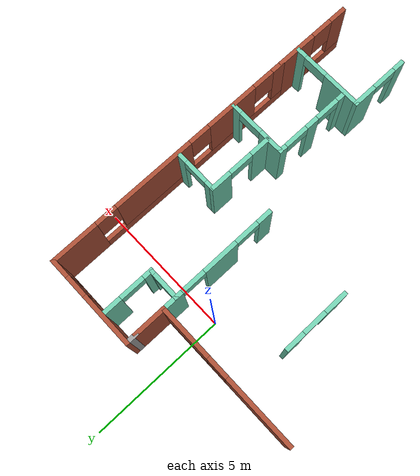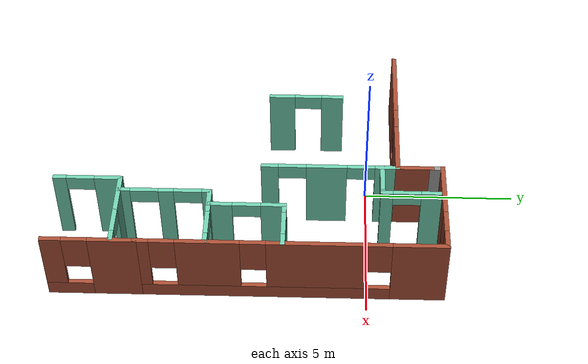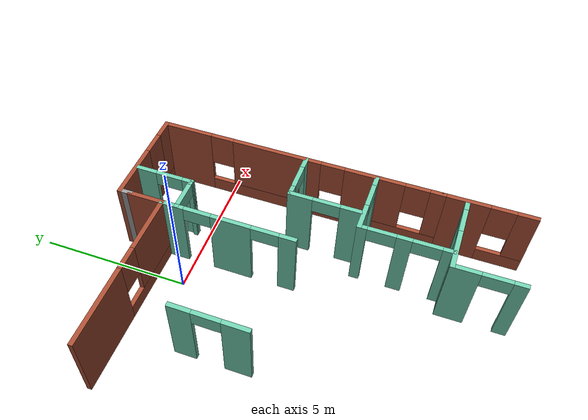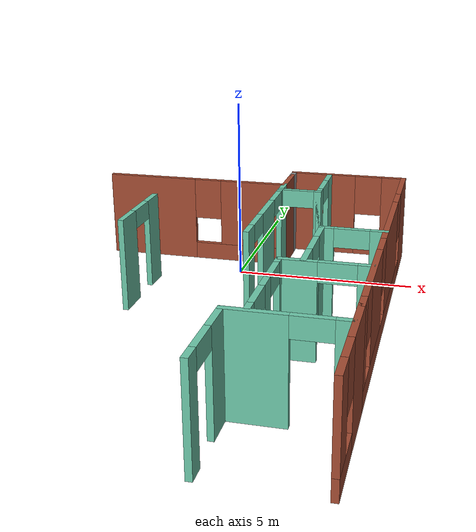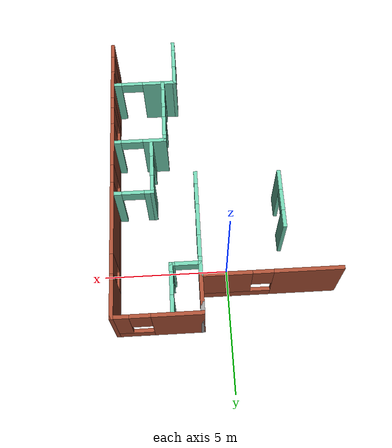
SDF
<sdf version="1.6">
 <model name="my_apartment">
  <pose>-3.10653 -3.79856 0 0 -0 0</pose>
  <link name="Wall_0">
   <pose>1.52918 4.775 0 0 -0 0</pose>
   <visual name="Wall_0_Visual_0">
    <pose>-1.4096 0 1.25 0 -0 0</pose>
    <geometry><box><size>2.6808 0.15 2.5</size></box></geometry>
    <material>
     <script><uri>file://media/materials/scripts/gazebo.material</uri><name>Gazebo/Bricks</name></script>
     <ambient>0.435294 0.796078 0.67451 1</ambient>
    </material>
    <meta><layer>0</layer></meta>
   </visual>
   <collision name="Wall_0_Collision_0">
    <geometry><box><size>2.6808 0.15 2.5</size></box></geometry>
    <pose>-1.4096 0 1.25 0 -0 0</pose>
   </collision>
   <visual name="Wall_0_Visual_1">
    <pose>1.3404 0 0.25 0 -0 0</pose>
    <geometry><box><size>2.8192 0.15 0.5</size></box></geometry>
    <material>
     <script><uri>file://media/materials/scripts/gazebo.material</uri><name>Gazebo/Bricks</name></script>
     <ambient>0.435294 0.796078 0.67451 1</ambient>
    </material>
    <meta><layer>0</layer></meta>
   </visual>
   <collision name="Wall_0_Collision_1">
    <geometry><box><size>2.8192 0.15 0.5</size></box></geometry>
    <pose>1.3404 0 0.25 0 -0 0</pose>
   </collision>
   <visual name="Wall_0_Visual_2">
    <pose>1.7404 0 1.5 0 -0 0</pose>
    <geometry><box><size>2.0192 0.15 2</size></box></geometry>
    <material>
     <script><uri>file://media/materials/scripts/gazebo.material</uri><name>Gazebo/Bricks</name></script>
     <ambient>0.435294 0.796078 0.67451 1</ambient>
    </material>
    <meta><layer>0</layer></meta>
   </visual>
   <collision name="Wall_0_Collision_2">
    <geometry><box><size>2.0192 0.15 2</size></box></geometry>
    <pose>1.7404 0 1.5 0 -0 0</pose>
   </collision>
   <visual name="Wall_0_Visual_3">
    <pose>0.330804 0 1.9 0 -0 0</pose>
    <geometry><box><size>0.8 0.15 1.2</size></box></geometry>
    <material>
     <script><uri>file://media/materials/scripts/gazebo.material</uri><name>Gazebo/Bricks</name></script>
     <ambient>0.435294 0.796078 0.67451 1</ambient>
    </material>
    <meta><layer>0</layer></meta>
   </visual>
   <collision name="Wall_0_Collision_3">
    <geometry><box><size>0.8 0.15 1.2</size></box></geometry>
    <pose>0.330804 0 1.9 0 -0 0</pose>
   </collision>
  </link>
  <link name="Wall_1">
   <collision name="Wall_1_Collision">
    <geometry><box><size>1.25 0.15 2.5</size></box></geometry>
    <pose>0 0 1.25 0 -0 0</pose>
   </collision>
   <visual name="Wall_1_Visual">
    <pose>0 0 1.25 0 -0 0</pose>
    <geometry><box><size>1.25 0.15 2.5</size></box></geometry>
    <material>
     <script><uri>file://media/materials/scripts/gazebo.material</uri><name>Gazebo/Bricks</name></script>
     <ambient>0.435294 0.796078 0.67451 1</ambient>
    </material>
    <meta><layer>0</layer></meta>
   </visual>
   <pose>4.20418 5.325 0 0 -0 1.5708</pose>
  </link>
  <link name="Wall_17">
   <pose>4.20435 2.59978 0 0 -0 1.57088</pose>
   <visual name="Wall_17_Visual_0">
    <pose>-1.96795 0 1.25 0 -0 0</pose>
    <geometry><box><size>0.564378 0.15 2.5</size></box></geometry>
    <material>
     <script><uri>file://media/materials/scripts/gazebo.material</uri><name>Gazebo/Grey</name></script>
     <ambient>0.435294 0.796078 0.67451 1</ambient>
    </material>
    <meta><layer>0</layer></meta>
   </visual>
   <collision name="Wall_17_Collision_0">
    <geometry><box><size>0.564378 0.15 2.5</size></box></geometry>
    <pose>-1.96795 0 1.25 0 -0 0</pose>
   </collision>
   <visual name="Wall_17_Visual_1">
    <pose>-0.125495 0 1.25 0 -0 0</pose>
    <geometry><box><size>1.32054 0.15 2.5</size></box></geometry>
    <material>
     <script><uri>file://media/materials/scripts/gazebo.material</uri><name>Gazebo/Grey</name></script>
     <ambient>0.435294 0.796078 0.67451 1</ambient>
    </material>
    <meta><layer>0</layer></meta>
   </visual>
   <collision name="Wall_17_Collision_1">
    <geometry><box><size>1.32054 0.15 2.5</size></box></geometry>
    <pose>-0.125495 0 1.25 0 -0 0</pose>
   </collision>
   <visual name="Wall_17_Visual_2">
    <pose>1.84246 0 1.25 0 -0 0</pose>
    <geometry><box><size>0.815367 0.15 2.5</size></box></geometry>
    <material>
     <script><uri>file://media/materials/scripts/gazebo.material</uri><name>Gazebo/Grey</name></script>
     <ambient>0.435294 0.796078 0.67451 1</ambient>
    </material>
    <meta><layer>0</layer></meta>
   </visual>
   <collision name="Wall_17_Collision_2">
    <geometry><box><size>0.815367 0.15 2.5</size></box></geometry>
    <pose>1.84246 0 1.25 0 -0 0</pose>
   </collision>
   <visual name="Wall_17_Visual_3">
    <pose>-1.23577 0 2.25 0 -0 0</pose>
    <geometry><box><size>0.9 0.15 0.5</size></box></geometry>
    <material>
     <script><uri>file://media/materials/scripts/gazebo.material</uri><name>Gazebo/Grey</name></script>
     <ambient>0.435294 0.796078 0.67451 1</ambient>
    </material>
    <meta><layer>0</layer></meta>
   </visual>
   <collision name="Wall_17_Collision_3">
    <geometry><box><size>0.9 0.15 0.5</size></box></geometry>
    <pose>-1.23577 0 2.25 0 -0 0</pose>
   </collision>
   <visual name="Wall_17_Visual_4">
    <pose>0.984776 0 2.25 0 -0 0</pose>
    <geometry><box><size>0.9 0.15 0.5</size></box></geometry>
    <material>
     <script><uri>file://media/materials/scripts/gazebo.material</uri><name>Gazebo/Grey</name></script>
     <ambient>0.435294 0.796078 0.67451 1</ambient>
    </material>
    <meta><layer>0</layer></meta>
   </visual>
   <collision name="Wall_17_Collision_4">
    <geometry><box><size>0.9 0.15 0.5</size></box></geometry>
    <pose>0.984776 0 2.25 0 -0 0</pose>
   </collision>
  </link>
  <link name="Wall_2">
   <collision name="Wall_2_Collision">
    <geometry><box><size>0.5 0.15 2.5</size></box></geometry>
    <pose>0 0 1.25 0 -0 0</pose>
   </collision>
   <visual name="Wall_2_Visual">
    <pose>0 0 1.25 0 -0 0</pose>
    <geometry><box><size>0.5 0.15 2.5</size></box></geometry>
    <material>
     <script><uri>file://media/materials/scripts/gazebo.material</uri><name>Gazebo/Grey</name></script>
     <ambient>1 1 1 1</ambient>
    </material>
    <meta><layer>0</layer></meta>
   </visual>
   <pose>4.20418 6.05 0 0 -0 1.5708</pose>
  </link>
  <link name="Wall_23">
   <pose>0.843373 1.74021 0 0 0 -1.5708</pose>
   <visual name="Wall_23_Visual_0">
    <pose>-0.881649 0 1.25 0 -0 0</pose>
    <geometry><box><size>0.736702 0.15 2.5</size></box></geometry>
    <material>
     <script><uri>file://media/materials/scripts/gazebo.material</uri><name>Gazebo/Grey</name></script>
     <ambient>0.435294 0.796078 0.67451 1</ambient>
    </material>
    <meta><layer>0</layer></meta>
   </visual>
   <collision name="Wall_23_Collision_0">
    <geometry><box><size>0.736702 0.15 2.5</size></box></geometry>
    <pose>-0.881649 0 1.25 0 -0 0</pose>
   </collision>
   <visual name="Wall_23_Visual_1">
    <pose>0.818351 0 1.25 0 -0 0</pose>
    <geometry><box><size>0.863298 0.15 2.5</size></box></geometry>
    <material>
     <script><uri>file://media/materials/scripts/gazebo.material</uri><name>Gazebo/Grey</name></script>
     <ambient>0.435294 0.796078 0.67451 1</ambient>
    </material>
    <meta><layer>0</layer></meta>
   </visual>
   <collision name="Wall_23_Collision_1">
    <geometry><box><size>0.863298 0.15 2.5</size></box></geometry>
    <pose>0.818351 0 1.25 0 -0 0</pose>
   </collision>
   <visual name="Wall_23_Visual_2">
    <pose>-0.063298 0 2.25 0 -0 0</pose>
    <geometry><box><size>0.9 0.15 0.5</size></box></geometry>
    <material>
     <script><uri>file://media/materials/scripts/gazebo.material</uri><name>Gazebo/Grey</name></script>
     <ambient>0.435294 0.796078 0.67451 1</ambient>
    </material>
    <meta><layer>0</layer></meta>
   </visual>
   <collision name="Wall_23_Collision_2">
    <geometry><box><size>0.9 0.15 0.5</size></box></geometry>
    <pose>-0.063298 0 2.25 0 -0 0</pose>
   </collision>
  </link>
  <link name="Wall_27">
   <pose>4.7693 4.27848 0 0 -0 0</pose>
   <visual name="Wall_27_Visual_0">
    <pose>-0.558063 0 1.25 0 -0 0</pose>
    <geometry><box><size>0.133873 0.15 2.5</size></box></geometry>
    <material>
     <script><uri>file://media/materials/scripts/gazebo.material</uri><name>Gazebo/Grey</name></script>
     <ambient>0.435294 0.796078 0.67451 1</ambient>
    </material>
    <meta><layer>0</layer></meta>
   </visual>
   <collision name="Wall_27_Collision_0">
    <geometry><box><size>0.133873 0.15 2.5</size></box></geometry>
    <pose>-0.558063 0 1.25 0 -0 0</pose>
   </collision>
   <visual name="Wall_27_Visual_1">
    <pose>0.516937 0 1.25 0 -0 0</pose>
    <geometry><box><size>0.216127 0.15 2.5</size></box></geometry>
    <material>
     <script><uri>file://media/materials/scripts/gazebo.material</uri><name>Gazebo/Grey</name></script>
     <ambient>0.435294 0.796078 0.67451 1</ambient>
    </material>
    <meta><layer>0</layer></meta>
   </visual>
   <collision name="Wall_27_Collision_1">
    <geometry><box><size>0.216127 0.15 2.5</size></box></geometry>
    <pose>0.516937 0 1.25 0 -0 0</pose>
   </collision>
   <visual name="Wall_27_Visual_2">
    <pose>-0.041127 0 2.25 0 -0 0</pose>
    <geometry><box><size>0.9 0.15 0.5</size></box></geometry>
    <material>
     <script><uri>file://media/materials/scripts/gazebo.material</uri><name>Gazebo/Grey</name></script>
     <ambient>0.435294 0.796078 0.67451 1</ambient>
    </material>
    <meta><layer>0</layer></meta>
   </visual>
   <collision name="Wall_27_Collision_2">
    <geometry><box><size>0.9 0.15 0.5</size></box></geometry>
    <pose>-0.041127 0 2.25 0 -0 0</pose>
   </collision>
  </link>
  <link name="Wall_28">
   <pose>5.3193 5.20348 0 0 -0 1.5708</pose>
   <visual name="Wall_28_Visual_0">
    <pose>-0.805845 0 1.25 0 -0 0</pose>
    <geometry><box><size>0.38831 0.15 2.5</size></box></geometry>
    <material>
     <script><uri>file://media/materials/scripts/gazebo.material</uri><name>Gazebo/Grey</name></script>
     <ambient>0.435294 0.796078 0.67451 1</ambient>
    </material>
    <meta><layer>0</layer></meta>
   </visual>
   <collision name="Wall_28_Collision_0">
    <geometry><box><size>0.38831 0.15 2.5</size></box></geometry>
    <pose>-0.805845 0 1.25 0 -0 0</pose>
   </collision>
   <visual name="Wall_28_Visual_1">
    <pose>0.644155 0 1.25 0 -0 0</pose>
    <geometry><box><size>0.71169 0.15 2.5</size></box></geometry>
    <material>
     <script><uri>file://media/materials/scripts/gazebo.material</uri><name>Gazebo/Grey</name></script>
     <ambient>0.435294 0.796078 0.67451 1</ambient>
    </material>
    <meta><layer>0</layer></meta>
   </visual>
   <collision name="Wall_28_Collision_1">
    <geometry><box><size>0.71169 0.15 2.5</size></box></geometry>
    <pose>0.644155 0 1.25 0 -0 0</pose>
   </collision>
   <visual name="Wall_28_Visual_2">
    <pose>-0.16169 0 2.25 0 -0 0</pose>
    <geometry><box><size>0.9 0.15 0.5</size></box></geometry>
    <material>
     <script><uri>file://media/materials/scripts/gazebo.material</uri><name>Gazebo/Grey</name></script>
     <ambient>0.435294 0.796078 0.67451 1</ambient>
    </material>
    <meta><layer>0</layer></meta>
   </visual>
   <collision name="Wall_28_Collision_2">
    <geometry><box><size>0.9 0.15 0.5</size></box></geometry>
    <pose>-0.16169 0 2.25 0 -0 0</pose>
   </collision>
  </link>
  <link name="Wall_3">
   <pose>5.87918 6.225 0 0 -0 0</pose>
   <visual name="Wall_3_Visual_0">
    <pose>-0.759972 0 1.25 0 -0 0</pose>
    <geometry><box><size>1.98006 0.15 2.5</size></box></geometry>
    <material>
     <script><uri>file://media/materials/scripts/gazebo.material</uri><name>Gazebo/Bricks</name></script>
     <ambient>0.435294 0.796078 0.67451 1</ambient>
    </material>
    <meta><layer>0</layer></meta>
   </visual>
   <collision name="Wall_3_Collision_0">
    <geometry><box><size>1.98006 0.15 2.5</size></box></geometry>
    <pose>-0.759972 0 1.25 0 -0 0</pose>
   </collision>
   <visual name="Wall_3_Visual_1">
    <pose>0.990028 0 0.25 0 -0 0</pose>
    <geometry><box><size>1.51994 0.15 0.5</size></box></geometry>
    <material>
     <script><uri>file://media/materials/scripts/gazebo.material</uri><name>Gazebo/Bricks</name></script>
     <ambient>0.435294 0.796078 0.67451 1</ambient>
    </material>
    <meta><layer>0</layer></meta>
   </visual>
   <collision name="Wall_3_Collision_1">
    <geometry><box><size>1.51994 0.15 0.5</size></box></geometry>
    <pose>0.990028 0 0.25 0 -0 0</pose>
   </collision>
   <visual name="Wall_3_Visual_2">
    <pose>1.39003 0 1.5 0 -0 0</pose>
    <geometry><box><size>0.719944 0.15 2</size></box></geometry>
    <material>
     <script><uri>file://media/materials/scripts/gazebo.material</uri><name>Gazebo/Bricks</name></script>
     <ambient>0.435294 0.796078 0.67451 1</ambient>
    </material>
    <meta><layer>0</layer></meta>
   </visual>
   <collision name="Wall_3_Collision_2">
    <geometry><box><size>0.719944 0.15 2</size></box></geometry>
    <pose>1.39003 0 1.5 0 -0 0</pose>
   </collision>
   <visual name="Wall_3_Visual_3">
    <pose>0.630056 0 1.9 0 -0 0</pose>
    <geometry><box><size>0.8 0.15 1.2</size></box></geometry>
    <material>
     <script><uri>file://media/materials/scripts/gazebo.material</uri><name>Gazebo/Bricks</name></script>
     <ambient>0.435294 0.796078 0.67451 1</ambient>
    </material>
    <meta><layer>0</layer></meta>
   </visual>
   <collision name="Wall_3_Collision_3">
    <geometry><box><size>0.8 0.15 1.2</size></box></geometry>
    <pose>0.630056 0 1.9 0 -0 0</pose>
   </collision>
  </link>
  <link name="Wall_30">
   <pose>4.89009 -5.17282 0 0 -0 1.5708</pose>
   <visual name="Wall_30_Visual_0">
    <pose>-0.907714 0 1.25 0 -0 0</pose>
    <geometry><box><size>0.434571 0.15 2.5</size></box></geometry>
    <material>
     <script><uri>file://media/materials/scripts/gazebo.material</uri><name>Gazebo/Grey</name></script>
     <ambient>0.435294 0.796078 0.67451 1</ambient>
    </material>
    <meta><layer>0</layer></meta>
   </visual>
   <collision name="Wall_30_Collision_0">
    <geometry><box><size>0.434571 0.15 2.5</size></box></geometry>
    <pose>-0.907714 0 1.25 0 -0 0</pose>
   </collision>
   <visual name="Wall_30_Visual_1">
    <pose>0.667286 0 1.25 0 -0 0</pose>
    <geometry><box><size>0.915429 0.15 2.5</size></box></geometry>
    <material>
     <script><uri>file://media/materials/scripts/gazebo.material</uri><name>Gazebo/Grey</name></script>
     <ambient>0.435294 0.796078 0.67451 1</ambient>
    </material>
    <meta><layer>0</layer></meta>
   </visual>
   <collision name="Wall_30_Collision_1">
    <geometry><box><size>0.915429 0.15 2.5</size></box></geometry>
    <pose>0.667286 0 1.25 0 -0 0</pose>
   </collision>
   <visual name="Wall_30_Visual_2">
    <pose>-0.240429 0 2.25 0 -0 0</pose>
    <geometry><box><size>0.9 0.15 0.5</size></box></geometry>
    <material>
     <script><uri>file://media/materials/scripts/gazebo.material</uri><name>Gazebo/Grey</name></script>
     <ambient>0.435294 0.796078 0.67451 1</ambient>
    </material>
    <meta><layer>0</layer></meta>
   </visual>
   <collision name="Wall_30_Collision_2">
    <geometry><box><size>0.9 0.15 0.5</size></box></geometry>
    <pose>-0.240429 0 2.25 0 -0 0</pose>
   </collision>
  </link>
  <link name="Wall_31">
   <pose>6.19009 -4.12282 0 0 -0 0</pose>
   <visual name="Wall_31_Visual_0">
    <pose>-0.648841 0 1.25 0 -0 0</pose>
    <geometry><box><size>1.45232 0.15 2.5</size></box></geometry>
    <material>
     <script><uri>file://media/materials/scripts/gazebo.material</uri><name>Gazebo/Grey</name></script>
     <ambient>0.435294 0.796078 0.67451 1</ambient>
    </material>
    <meta><layer>0</layer></meta>
   </visual>
   <collision name="Wall_31_Collision_0">
    <geometry><box><size>1.45232 0.15 2.5</size></box></geometry>
    <pose>-0.648841 0 1.25 0 -0 0</pose>
   </collision>
   <visual name="Wall_31_Visual_1">
    <pose>1.17616 0 1.25 0 -0 0</pose>
    <geometry><box><size>0.397682 0.15 2.5</size></box></geometry>
    <material>
     <script><uri>file://media/materials/scripts/gazebo.material</uri><name>Gazebo/Grey</name></script>
     <ambient>0.435294 0.796078 0.67451 1</ambient>
    </material>
    <meta><layer>0</layer></meta>
   </visual>
   <collision name="Wall_31_Collision_1">
    <geometry><box><size>0.397682 0.15 2.5</size></box></geometry>
    <pose>1.17616 0 1.25 0 -0 0</pose>
   </collision>
   <visual name="Wall_31_Visual_2">
    <pose>0.527318 0 2.25 0 -0 0</pose>
    <geometry><box><size>0.9 0.15 0.5</size></box></geometry>
    <material>
     <script><uri>file://media/materials/scripts/gazebo.material</uri><name>Gazebo/Grey</name></script>
     <ambient>0.435294 0.796078 0.67451 1</ambient>
    </material>
    <meta><layer>0</layer></meta>
   </visual>
   <collision name="Wall_31_Collision_2">
    <geometry><box><size>0.9 0.15 0.5</size></box></geometry>
    <pose>0.527318 0 2.25 0 -0 0</pose>
   </collision>
  </link>
  <link name="Wall_33">
   <pose>5.39896 -2.64667 0 0 -0 1.5708</pose>
   <visual name="Wall_33_Visual_0">
    <pose>-1.30584 0 1.25 0 -0 0</pose>
    <geometry><box><size>0.38831 0.15 2.5</size></box></geometry>
    <material>
     <script><uri>file://media/materials/scripts/gazebo.material</uri><name>Gazebo/Grey</name></script>
     <ambient>0.435294 0.796078 0.67451 1</ambient>
    </material>
    <meta><layer>0</layer></meta>
   </visual>
   <collision name="Wall_33_Collision_0">
    <geometry><box><size>0.38831 0.15 2.5</size></box></geometry>
    <pose>-1.30584 0 1.25 0 -0 0</pose>
   </collision>
   <visual name="Wall_33_Visual_1">
    <pose>0.032228 0 1.25 0 -0 0</pose>
    <geometry><box><size>0.487836 0.15 2.5</size></box></geometry>
    <material>
     <script><uri>file://media/materials/scripts/gazebo.material</uri><name>Gazebo/Grey</name></script>
     <ambient>0.435294 0.796078 0.67451 1</ambient>
    </material>
    <meta><layer>0</layer></meta>
   </visual>
   <collision name="Wall_33_Collision_1">
    <geometry><box><size>0.487836 0.15 2.5</size></box></geometry>
    <pose>0.032228 0 1.25 0 -0 0</pose>
   </collision>
   <visual name="Wall_33_Visual_2">
    <pose>1.33807 0 1.25 0 -0 0</pose>
    <geometry><box><size>0.323854 0.15 2.5</size></box></geometry>
    <material>
     <script><uri>file://media/materials/scripts/gazebo.material</uri><name>Gazebo/Grey</name></script>
     <ambient>0.435294 0.796078 0.67451 1</ambient>
    </material>
    <meta><layer>0</layer></meta>
   </visual>
   <collision name="Wall_33_Collision_2">
    <geometry><box><size>0.323854 0.15 2.5</size></box></geometry>
    <pose>1.33807 0 1.25 0 -0 0</pose>
   </collision>
   <visual name="Wall_33_Visual_3">
    <pose>-0.66169 0 2.25 0 -0 0</pose>
    <geometry><box><size>0.9 0.15 0.5</size></box></geometry>
    <material>
     <script><uri>file://media/materials/scripts/gazebo.material</uri><name>Gazebo/Grey</name></script>
     <ambient>0.435294 0.796078 0.67451 1</ambient>
    </material>
    <meta><layer>0</layer></meta>
   </visual>
   <collision name="Wall_33_Collision_3">
    <geometry><box><size>0.9 0.15 0.5</size></box></geometry>
    <pose>-0.66169 0 2.25 0 -0 0</pose>
   </collision>
   <visual name="Wall_33_Visual_4">
    <pose>0.726146 0 2.25 0 -0 0</pose>
    <geometry><box><size>0.9 0.15 0.5</size></box></geometry>
    <material>
     <script><uri>file://media/materials/scripts/gazebo.material</uri><name>Gazebo/Grey</name></script>
     <ambient>0.435294 0.796078 0.67451 1</ambient>
    </material>
    <meta><layer>0</layer></meta>
   </visual>
   <collision name="Wall_33_Collision_4">
    <geometry><box><size>0.9 0.15 0.5</size></box></geometry>
    <pose>0.726146 0 2.25 0 -0 0</pose>
   </collision>
  </link>
  <link name="Wall_34">
   <pose>6.44896 -1.22167 0 0 -0 0</pose>
   <visual name="Wall_34_Visual_0">
    <pose>-0.641712 0 1.25 0 -0 0</pose>
    <geometry><box><size>0.966575 0.15 2.5</size></box></geometry>
    <material>
     <script><uri>file://media/materials/scripts/gazebo.material</uri><name>Gazebo/Grey</name></script>
     <ambient>0.435294 0.796078 0.67451 1</ambient>
    </material>
    <meta><layer>0</layer></meta>
   </visual>
   <collision name="Wall_34_Collision_0">
    <geometry><box><size>0.966575 0.15 2.5</size></box></geometry>
    <pose>-0.641712 0 1.25 0 -0 0</pose>
   </collision>
   <visual name="Wall_34_Visual_1">
    <pose>0.933288 0 1.25 0 -0 0</pose>
    <geometry><box><size>0.383425 0.15 2.5</size></box></geometry>
    <material>
     <script><uri>file://media/materials/scripts/gazebo.material</uri><name>Gazebo/Grey</name></script>
     <ambient>0.435294 0.796078 0.67451 1</ambient>
    </material>
    <meta><layer>0</layer></meta>
   </visual>
   <collision name="Wall_34_Collision_1">
    <geometry><box><size>0.383425 0.15 2.5</size></box></geometry>
    <pose>0.933288 0 1.25 0 -0 0</pose>
   </collision>
   <visual name="Wall_34_Visual_2">
    <pose>0.291575 0 2.25 0 -0 0</pose>
    <geometry><box><size>0.9 0.15 0.5</size></box></geometry>
    <material>
     <script><uri>file://media/materials/scripts/gazebo.material</uri><name>Gazebo/Grey</name></script>
     <ambient>0.435294 0.796078 0.67451 1</ambient>
    </material>
    <meta><layer>0</layer></meta>
   </visual>
   <collision name="Wall_34_Collision_2">
    <geometry><box><size>0.9 0.15 0.5</size></box></geometry>
    <pose>0.291575 0 2.25 0 -0 0</pose>
   </collision>
  </link>
  <link name="Wall_36">
   <pose>5.9541 -0.005345 0 0 -0 1.5708</pose>
   <visual name="Wall_36_Visual_0">
    <pose>-0.859235 0 1.25 0 -0 0</pose>
    <geometry><box><size>0.78153 0.15 2.5</size></box></geometry>
    <material>
     <script><uri>file://media/materials/scripts/gazebo.material</uri><name>Gazebo/Grey</name></script>
     <ambient>0.435294 0.796078 0.67451 1</ambient>
    </material>
    <meta><layer>0</layer></meta>
   </visual>
   <collision name="Wall_36_Collision_0">
    <geometry><box><size>0.78153 0.15 2.5</size></box></geometry>
    <pose>-0.859235 0 1.25 0 -0 0</pose>
   </collision>
   <visual name="Wall_36_Visual_1">
    <pose>0.840765 0 1.25 0 -0 0</pose>
    <geometry><box><size>0.81847 0.15 2.5</size></box></geometry>
    <material>
     <script><uri>file://media/materials/scripts/gazebo.material</uri><name>Gazebo/Grey</name></script>
     <ambient>0.435294 0.796078 0.67451 1</ambient>
    </material>
    <meta><layer>0</layer></meta>
   </visual>
   <collision name="Wall_36_Collision_1">
    <geometry><box><size>0.81847 0.15 2.5</size></box></geometry>
    <pose>0.840765 0 1.25 0 -0 0</pose>
   </collision>
   <visual name="Wall_36_Visual_2">
    <pose>-0.01847 0 2.25 0 -0 0</pose>
    <geometry><box><size>0.9 0.15 0.5</size></box></geometry>
    <material>
     <script><uri>file://media/materials/scripts/gazebo.material</uri><name>Gazebo/Grey</name></script>
     <ambient>0.435294 0.796078 0.67451 1</ambient>
    </material>
    <meta><layer>0</layer></meta>
   </visual>
   <collision name="Wall_36_Collision_2">
    <geometry><box><size>0.9 0.15 0.5</size></box></geometry>
    <pose>-0.01847 0 2.25 0 -0 0</pose>
   </collision>
  </link>
  <link name="Wall_37">
   <pose>6.7541 1.16965 0 0 -0 0</pose>
   <visual name="Wall_37_Visual_0">
    <pose>-0.680845 0 1.25 0 -0 0</pose>
    <geometry><box><size>0.38831 0.15 2.5</size></box></geometry>
    <material>
     <script><uri>file://media/materials/scripts/gazebo.material</uri><name>Gazebo/Grey</name></script>
     <ambient>0.435294 0.796078 0.67451 1</ambient>
    </material>
    <meta><layer>0</layer></meta>
   </visual>
   <collision name="Wall_37_Collision_0">
    <geometry><box><size>0.38831 0.15 2.5</size></box></geometry>
    <pose>-0.680845 0 1.25 0 -0 0</pose>
   </collision>
   <visual name="Wall_37_Visual_1">
    <pose>0.644155 0 1.25 0 -0 0</pose>
    <geometry><box><size>0.46169 0.15 2.5</size></box></geometry>
    <material>
     <script><uri>file://media/materials/scripts/gazebo.material</uri><name>Gazebo/Grey</name></script>
     <ambient>0.435294 0.796078 0.67451 1</ambient>
    </material>
    <meta><layer>0</layer></meta>
   </visual>
   <collision name="Wall_37_Collision_1">
    <geometry><box><size>0.46169 0.15 2.5</size></box></geometry>
    <pose>0.644155 0 1.25 0 -0 0</pose>
   </collision>
   <visual name="Wall_37_Visual_2">
    <pose>-0.03669 0 2.25 0 -0 0</pose>
    <geometry><box><size>0.9 0.15 0.5</size></box></geometry>
    <material>
     <script><uri>file://media/materials/scripts/gazebo.material</uri><name>Gazebo/Grey</name></script>
     <ambient>0.435294 0.796078 0.67451 1</ambient>
    </material>
    <meta><layer>0</layer></meta>
   </visual>
   <collision name="Wall_37_Collision_2">
    <geometry><box><size>0.9 0.15 0.5</size></box></geometry>
    <pose>-0.03669 0 2.25 0 -0 0</pose>
   </collision>
  </link>
  <link name="Wall_4">
   <pose>7.55418 1.425 0 0 0 -1.5708</pose>
   <visual name="Wall_4_Visual_0">
    <pose>-3.99485 0 1.25 0 -0 0</pose>
    <geometry><box><size>1.76031 0.15 2.5</size></box></geometry>
    <material>
     <script><uri>file://media/materials/scripts/gazebo.material</uri><name>Gazebo/Bricks</name></script>
     <ambient>0.435294 0.796078 0.67451 1</ambient>
    </material>
    <meta><layer>0</layer></meta>
   </visual>
   <collision name="Wall_4_Collision_0">
    <geometry><box><size>1.76031 0.15 2.5</size></box></geometry>
    <pose>-3.99485 0 1.25 0 -0 0</pose>
   </collision>
   <visual name="Wall_4_Visual_1">
    <pose>0.880153 0 0.25 0 -0 0</pose>
    <geometry><box><size>7.98969 0.15 0.5</size></box></geometry>
    <material>
     <script><uri>file://media/materials/scripts/gazebo.material</uri><name>Gazebo/Bricks</name></script>
     <ambient>0.435294 0.796078 0.67451 1</ambient>
    </material>
    <meta><layer>0</layer></meta>
   </visual>
   <collision name="Wall_4_Collision_1">
    <geometry><box><size>7.98969 0.15 0.5</size></box></geometry>
    <pose>0.880153 0 0.25 0 -0 0</pose>
   </collision>
   <visual name="Wall_4_Visual_2">
    <pose>-0.771723 0 1.5 0 -0 0</pose>
    <geometry><box><size>3.08594 0.15 2</size></box></geometry>
    <material>
     <script><uri>file://media/materials/scripts/gazebo.material</uri><name>Gazebo/Bricks</name></script>
     <ambient>0.435294 0.796078 0.67451 1</ambient>
    </material>
    <meta><layer>0</layer></meta>
   </visual>
   <collision name="Wall_4_Collision_2">
    <geometry><box><size>3.08594 0.15 2</size></box></geometry>
    <pose>-0.771723 0 1.5 0 -0 0</pose>
   </collision>
   <visual name="Wall_4_Visual_3">
    <pose>2.57065 0 1.5 0 -0 0</pose>
    <geometry><box><size>1.9988 0.15 2</size></box></geometry>
    <material>
     <script><uri>file://media/materials/scripts/gazebo.material</uri><name>Gazebo/Bricks</name></script>
     <ambient>0.435294 0.796078 0.67451 1</ambient>
    </material>
    <meta><layer>0</layer></meta>
   </visual>
   <collision name="Wall_4_Collision_3">
    <geometry><box><size>1.9988 0.15 2</size></box></geometry>
    <pose>2.57065 0 1.5 0 -0 0</pose>
   </collision>
   <visual name="Wall_4_Visual_4">
    <pose>4.62253 0 1.5 0 -0 0</pose>
    <geometry><box><size>0.504949 0.15 2</size></box></geometry>
    <material>
     <script><uri>file://media/materials/scripts/gazebo.material</uri><name>Gazebo/Bricks</name></script>
     <ambient>0.435294 0.796078 0.67451 1</ambient>
    </material>
    <meta><layer>0</layer></meta>
   </visual>
   <collision name="Wall_4_Collision_4">
    <geometry><box><size>0.504949 0.15 2</size></box></geometry>
    <pose>4.62253 0 1.5 0 -0 0</pose>
   </collision>
   <visual name="Wall_4_Visual_5">
    <pose>-2.71469 0 1.9 0 -0 0</pose>
    <geometry><box><size>0.8 0.15 1.2</size></box></geometry>
    <material>
     <script><uri>file://media/materials/scripts/gazebo.material</uri><name>Gazebo/Bricks</name></script>
     <ambient>0.435294 0.796078 0.67451 1</ambient>
    </material>
    <meta><layer>0</layer></meta>
   </visual>
   <collision name="Wall_4_Collision_5">
    <geometry><box><size>0.8 0.15 1.2</size></box></geometry>
    <pose>-2.71469 0 1.9 0 -0 0</pose>
   </collision>
   <visual name="Wall_4_Visual_6">
    <pose>1.17125 0 1.9 0 -0 0</pose>
    <geometry><box><size>0.8 0.15 1.2</size></box></geometry>
    <material>
     <script><uri>file://media/materials/scripts/gazebo.material</uri><name>Gazebo/Bricks</name></script>
     <ambient>0.435294 0.796078 0.67451 1</ambient>
    </material>
    <meta><layer>0</layer></meta>
   </visual>
   <collision name="Wall_4_Collision_6">
    <geometry><box><size>0.8 0.15 1.2</size></box></geometry>
    <pose>1.17125 0 1.9 0 -0 0</pose>
   </collision>
   <visual name="Wall_4_Visual_7">
    <pose>3.97005 0 1.9 0 -0 0</pose>
    <geometry><box><size>0.8 0.15 1.2</size></box></geometry>
    <material>
     <script><uri>file://media/materials/scripts/gazebo.material</uri><name>Gazebo/Bricks</name></script>
     <ambient>0.435294 0.796078 0.67451 1</ambient>
    </material>
    <meta><layer>0</layer></meta>
   </visual>
   <collision name="Wall_4_Collision_7">
    <geometry><box><size>0.8 0.15 1.2</size></box></geometry>
    <pose>3.97005 0 1.9 0 -0 0</pose>
   </collision>
  </link>
  <link name="Wall_5">
   <pose>7.55418 -4.8 0 0 0 -1.5708</pose>
   <visual name="Wall_5_Visual_0">
    <pose>-0.735899 0 1.25 0 -0 0</pose>
    <geometry><box><size>1.5282 0.15 2.5</size></box></geometry>
    <material>
     <script><uri>file://media/materials/scripts/gazebo.material</uri><name>Gazebo/Bricks</name></script>
     <ambient>0.435294 0.796078 0.67451 1</ambient>
    </material>
    <meta><layer>0</layer></meta>
   </visual>
   <collision name="Wall_5_Collision_0">
    <geometry><box><size>1.5282 0.15 2.5</size></box></geometry>
    <pose>-0.735899 0 1.25 0 -0 0</pose>
   </collision>
   <visual name="Wall_5_Visual_1">
    <pose>0.764101 0 0.25 0 -0 0</pose>
    <geometry><box><size>1.4718 0.15 0.5</size></box></geometry>
    <material>
     <script><uri>file://media/materials/scripts/gazebo.material</uri><name>Gazebo/Bricks</name></script>
     <ambient>0.435294 0.796078 0.67451 1</ambient>
    </material>
    <meta><layer>0</layer></meta>
   </visual>
   <collision name="Wall_5_Collision_1">
    <geometry><box><size>1.4718 0.15 0.5</size></box></geometry>
    <pose>0.764101 0 0.25 0 -0 0</pose>
   </collision>
   <visual name="Wall_5_Visual_2">
    <pose>1.1641 0 1.5 0 -0 0</pose>
    <geometry><box><size>0.671798 0.15 2</size></box></geometry>
    <material>
     <script><uri>file://media/materials/scripts/gazebo.material</uri><name>Gazebo/Bricks</name></script>
     <ambient>0.435294 0.796078 0.67451 1</ambient>
    </material>
    <meta><layer>0</layer></meta>
   </visual>
   <collision name="Wall_5_Collision_2">
    <geometry><box><size>0.671798 0.15 2</size></box></geometry>
    <pose>1.1641 0 1.5 0 -0 0</pose>
   </collision>
   <visual name="Wall_5_Visual_3">
    <pose>0.428202 0 1.9 0 -0 0</pose>
    <geometry><box><size>0.8 0.15 1.2</size></box></geometry>
    <material>
     <script><uri>file://media/materials/scripts/gazebo.material</uri><name>Gazebo/Bricks</name></script>
     <ambient>0.435294 0.796078 0.67451 1</ambient>
    </material>
    <meta><layer>0</layer></meta>
   </visual>
   <collision name="Wall_5_Collision_3">
    <geometry><box><size>0.8 0.15 1.2</size></box></geometry>
    <pose>0.428202 0 1.9 0 -0 0</pose>
   </collision>
  </link>
  <static>1</static>
 </model>
</sdf>
